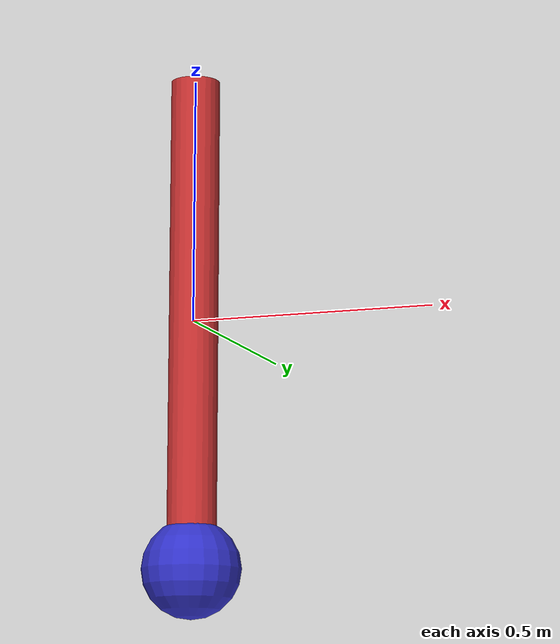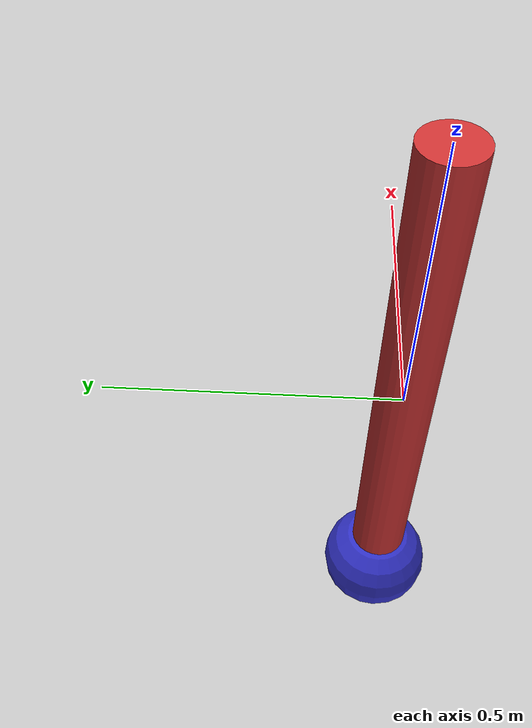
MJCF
<mujoco model="pendulum">
  <worldbody>
    <light diffuse=".5 .5 .5" pos="0 0 3" dir="0 0 -1"/>
    <body name="pole" pos="0 0 0">
      <joint name="hinge" type="hinge" axis="0 1 0" limited="false"/>
      <geom name="pole_geom" type="cylinder" size="0.05 0.5" rgba="0.8 0.2 0.2 1"/>
      <geom name="mass" type="sphere" size="0.1" pos="0 0 -0.5" rgba="0.2 0.2 0.8 1"/>
    </body>
  </worldbody>
  <actuator>
    <motor joint="hinge" gear="1" ctrllimited="true" ctrlrange="-5 5"/>
  </actuator>
</mujoco>
